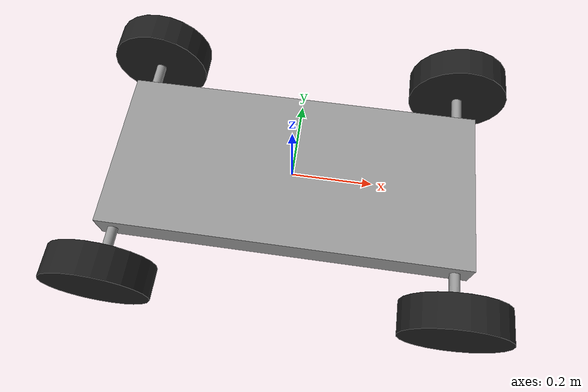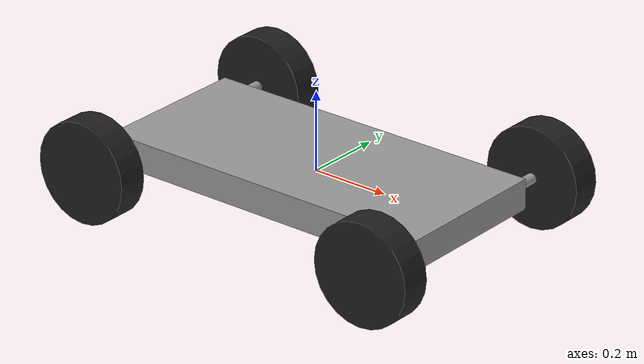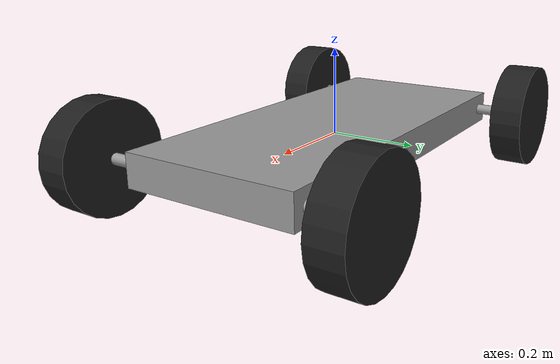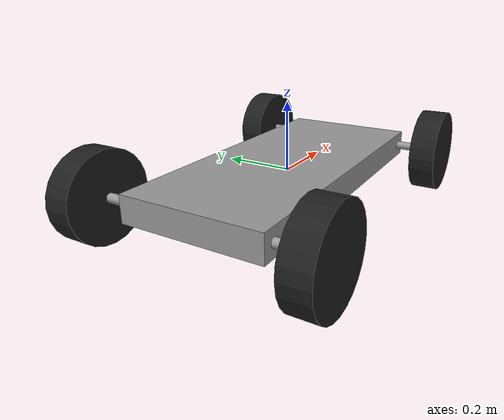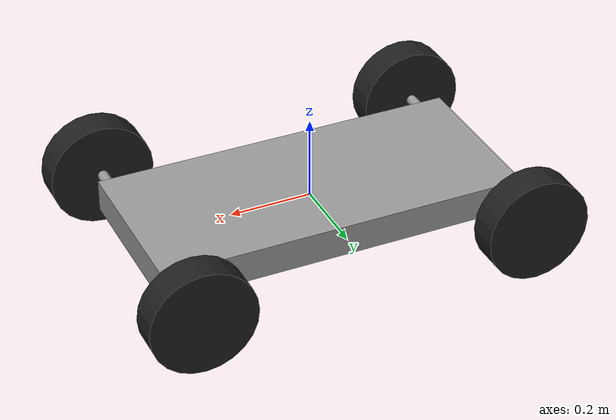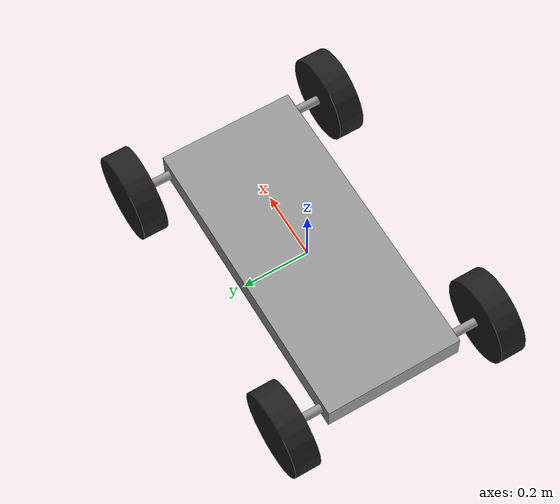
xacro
<?xml version="1.0"?>

<robot name="ros_car" xmlns:xacro="http://www.ros.org/wiki/xacro">

	<xacro:property name="PI" value="3.1415926535897931"/>
	<xacro:property name="DEG_2_RAD" value="${PI/180}"/>
	<xacro:property name="INCH_2_METER" value="0.0254"/>
	<xacro:property name="LB_2_KG" value="0.453592"/>

	<!-- Length [inch], Mass [pound] -->

	<xacro:property name="steer_link_diameter" value="1" />
	<xacro:property name="steer_link_length" value="3" />
	<xacro:property name="steer_link_mass" value="0.5" />

	<xacro:property name="chassis_width" value="16" />
	<xacro:property name="chassis_length" value="35.25" />
	<xacro:property name="chassis_depth" value="3" />
	<xacro:property name="chassis_mass" value="110" />

	<xacro:property name="wheel_diameter" value="10" />
	<xacro:property name="wheel_width" value="3" />
	<xacro:property name="wheel_mass" value="2.5" />

	<xacro:property name="laser_x" value="12" />
	<xacro:property name="laser_z" value="6" />

	<xacro:property name="max_base_velocity" value="1" />
	<xacro:property name="max_wheel_joint_velocity" value="${max_base_velocity/(wheel_diameter/2)}" /> <!-- rad/s -->

	<xacro:property name="max_steer_angle" value="${30*DEG_2_RAD}" />
	<xacro:property name="max_wheel_joint_effort" value="20" />
	<xacro:property name="wheel_joint_friction" value="0.0" />
	<xacro:property name="wheel_joint_damping" value="0.00" />

	<xacro:property name="wheel_stiffness" value="1000.0" />
	<xacro:property name="wheel_damping" value="1.0" />
	<xacro:property name="wheel_mu" value="1.0" />
	<xacro:property name="wheel_mu2" value="1.0" />
	<xacro:property name="wheel_slip1" value="0.0" />
	<xacro:property name="wheel_slip2" value="0.0" />

	<xacro:property name="max_steer_joint_effort" value="35" />
	<xacro:property name="max_steer_joint_velocity" value="${120*DEG_2_RAD}" />
	<xacro:property name="steer_joint_friction" value="1" />
	<xacro:property name="steer_joint_damping" value="1" />

	<xacro:property name="min_turn_radius" value="0.5" />

	<xacro:property name="min_laser_angle" value="${-100*DEG_2_RAD}" />
    <xacro:property name="max_laser_angle" value="${100*DEG_2_RAD}" />

	<!-- Coordinate convention: x-forward, y-left, z-up -->

	<link name="base_link">

		<collision>
			<origin xyz="0 0 0" rpy="0 0 0"/>
			<geometry>
				<box size="${chassis_length*INCH_2_METER} ${chassis_width*INCH_2_METER} ${chassis_depth*INCH_2_METER}"/>
			</geometry>
		</collision>

		<visual>
			<origin xyz="0 0 0" rpy="0 0 0"/>
			<geometry>
				<box size="${chassis_length*INCH_2_METER} ${chassis_width*INCH_2_METER} ${chassis_depth*INCH_2_METER}"/>
			</geometry>
		</visual>

		<inertial>
			<origin xyz="0 0 0" rpy="0 0 0"/>
			<mass value="${chassis_mass*LB_2_KG}"/>
			<inertia
				ixx="${chassis_mass/12.0*(chassis_width*chassis_width + chassis_depth*chassis_depth)*LB_2_KG*INCH_2_METER*INCH_2_METER}"
				iyy="${chassis_mass/12.0*(chassis_length*chassis_length + chassis_depth*chassis_depth)*LB_2_KG*INCH_2_METER*INCH_2_METER}"
				izz="${chassis_mass/12.0*(chassis_width*chassis_width + chassis_length*chassis_length)*LB_2_KG*INCH_2_METER*INCH_2_METER}"
				ixy="0.0"
				ixz="0.0"
				iyz="0.0"
			/>
		</inertial>

	</link>

	<gazebo reference="base_link">
		<material>Gazebo/Gray</material>
	</gazebo>

	<link name="rear_left_axle_link">

		<collision>
		  <origin xyz="0 ${steer_link_length*INCH_2_METER/2} 0" rpy="${PI/2} 0 0"/>
		  <geometry>
				<cylinder radius="${steer_link_diameter*INCH_2_METER/2}" length="${steer_link_length*INCH_2_METER}" />
		  </geometry>
		</collision>

		<visual>
		  <origin xyz="0 ${steer_link_length*INCH_2_METER/2} 0" rpy="${PI/2} 0 0"/>
		  <geometry>
			  <cylinder radius="${steer_link_diameter*INCH_2_METER/2}" length="${steer_link_length*INCH_2_METER}" />
		  </geometry>
		</visual>

		<inertial>
		  <origin xyz="0 0 0" rpy="${PI/2} 0 0"/>
		  <mass value="${steer_link_mass*LB_2_KG}"/>
		  <inertia
			  ixx="${steer_link_mass/12*(3*(steer_link_diameter/2)*(steer_link_diameter/2) + steer_link_length*steer_link_length)*LB_2_KG*INCH_2_METER*INCH_2_METER}"
			  iyy="${steer_link_mass/12*(3*(steer_link_diameter/2)*(steer_link_diameter/2) + steer_link_length*steer_link_length)*LB_2_KG*INCH_2_METER*INCH_2_METER}"
			  izz="${steer_link_mass/2*((steer_link_diameter/2)*(steer_link_diameter/2))*LB_2_KG*INCH_2_METER*INCH_2_METER}"
			  ixy="0.0"
			  ixz="0.0"
			  iyz="0.0"
		   />
		</inertial>

	</link>

	<gazebo reference="rear_left_axle_link">
		<material>Gazebo/Gray</material>
	</gazebo>

	<joint name="rear_left_axle_joint" type="fixed">
		<parent link="base_link"/>
		<child link="rear_left_axle_link"/>
		<origin xyz="${-(chassis_length-wheel_width)*INCH_2_METER/2} ${chassis_width*INCH_2_METER/2} 0" />
		<axis xyz="0 1 0" />
	</joint>

	<link name="rear_right_axle_link">

		<collision>
		  <origin xyz="0 ${-steer_link_length*INCH_2_METER/2} 0" rpy="${PI/2} 0 0"/>
		  <geometry>
				<cylinder radius="${steer_link_diameter*INCH_2_METER/2}" length="${steer_link_length*INCH_2_METER}" />
		  </geometry>
		</collision>

		<visual>
		  <origin xyz="0 ${-steer_link_length*INCH_2_METER/2} 0" rpy="${PI/2} 0 0"/>
		  <geometry>
			  <cylinder radius="${steer_link_diameter*INCH_2_METER/2}" length="${steer_link_length*INCH_2_METER}" />
		  </geometry>
		</visual>

		<inertial>
		  <origin xyz="0 0 0" rpy="${PI/2} 0 0"/>
		  <mass value="${steer_link_mass*LB_2_KG}"/>
		  <inertia
			  ixx="${steer_link_mass/12*(3*(steer_link_diameter/2)*(steer_link_diameter/2) + steer_link_length*steer_link_length)*LB_2_KG*INCH_2_METER*INCH_2_METER}"
			  iyy="${steer_link_mass/12*(3*(steer_link_diameter/2)*(steer_link_diameter/2) + steer_link_length*steer_link_length)*LB_2_KG*INCH_2_METER*INCH_2_METER}"
			  izz="${steer_link_mass/2*((steer_link_diameter/2)*(steer_link_diameter/2))*LB_2_KG*INCH_2_METER*INCH_2_METER}"
			  ixy="0.0"
			  ixz="0.0"
			  iyz="0.0"
		   />
		</inertial>

	</link>

	<gazebo reference="rear_right_axle_link">
		<material>Gazebo/Gray</material>
	</gazebo>

	<joint name="rear_right_axle_joint" type="fixed">
		<parent link="base_link"/>
		<child link="rear_right_axle_link"/>
		<origin xyz="${-(chassis_length-wheel_width)*INCH_2_METER/2} ${-chassis_width*INCH_2_METER/2} 0" />
		<axis xyz="0 1 0" />
	</joint>

	<link name="rear_right_wheel">

		<collision>
		  <origin xyz="0 0 0" rpy="${PI/2} 0 0"/>
		  <geometry>
				<cylinder radius="${wheel_diameter*INCH_2_METER/2}" length="${wheel_width*INCH_2_METER}" />
		  </geometry>
		  <contact_coefficients kp="${wheel_stiffness}" kd="${wheel_damping}" mu="${wheel_mu}" />
		  <!-- contact_coefficients mu="${wheel_mu}"/ -->
		  <surface>
	        <friction>
	          <ode>
	            <mu>${wheel_mu}</mu>
	            <mu2>${wheel_mu2}</mu2>
	            <slip1>${wheel_slip1}</slip1>
	            <slip2>${wheel_slip2}</slip2>
	          </ode>
	        </friction>
	        <contact>
	          <ode>
	            <kp>${wheel_stiffness}</kp>
	            <kd>${wheel_damping}</kd>
	          </ode>
	        </contact>
	      </surface>
		</collision>

		<visual>
		  <origin xyz="0 0 0" rpy="${PI/2} 0 0"/>
		  <geometry>
			  <cylinder radius="${wheel_diameter*INCH_2_METER/2}" length="${wheel_width*INCH_2_METER}" />
		  </geometry>
		</visual>

		<inertial>
		  <origin xyz="0 0 0" rpy="${PI/2} 0 0"/>
		  <mass value="${wheel_mass*LB_2_KG}"/>
		  <inertia
			  ixx="${wheel_mass/12*(3*(wheel_diameter/2)*(wheel_diameter/2) + wheel_width*wheel_width)*LB_2_KG*INCH_2_METER*INCH_2_METER}"
			  iyy="${wheel_mass/12*(3*(wheel_diameter/2)*(wheel_diameter/2) + wheel_width*wheel_width)*LB_2_KG*INCH_2_METER*INCH_2_METER}"
			  izz="${wheel_mass/2*((wheel_diameter/2)*(wheel_diameter/2))*LB_2_KG*INCH_2_METER*INCH_2_METER}"
			  ixy="0.0"
			  ixz="0.0"
			  iyz="0.0"
		   />
		</inertial>

	</link>

	<gazebo reference="rear_right_wheel">
		<material>Gazebo/Black</material>
	</gazebo>

	<joint name="rear_right_wheel_joint" type="continuous">
		<parent link="rear_right_axle_link"/>
		<child link="rear_right_wheel"/>
		<origin xyz="0 ${-(steer_link_length+wheel_width/2)*INCH_2_METER} 0" />
		<axis xyz="0 1 0" />
		<dynamics friction = "${wheel_joint_friction}" damping = "${wheel_joint_damping}"/>
		<limit effort="${max_wheel_joint_effort}" velocity="${max_wheel_joint_velocity}" />
	</joint>

	<link name="rear_left_wheel">

		<collision>
		  <origin xyz="0 0 0" rpy="${PI/2} 0 0"/>
		  <geometry>
				<cylinder radius="${wheel_diameter*INCH_2_METER/2}" length="${wheel_width*INCH_2_METER}" />
		  </geometry>
		  <contact_coefficients kp="${wheel_stiffness}" kd="${wheel_damping}" mu="${wheel_mu}" />
		  <!-- contact_coefficients mu="${wheel_mu}"/ -->
		  <surface>
	        <friction>
	          <ode>
	            <mu>${wheel_mu}</mu>
	            <mu2>${wheel_mu2}</mu2>
	            <slip1>${wheel_slip1}</slip1>
	            <slip2>${wheel_slip2}</slip2>
	          </ode>
	        </friction>
	        <contact>
	          <ode>
	            <kp>${wheel_stiffness}</kp>
	            <kd>${wheel_damping}</kd>
	          </ode>
	        </contact>
	      </surface>
		</collision>

		<visual>
		  <origin xyz="0 0 0" rpy="${PI/2} 0 0"/>
		  <geometry>
			  <cylinder radius="${wheel_diameter*INCH_2_METER/2}" length="${wheel_width*INCH_2_METER}" />
		  </geometry>
		</visual>

		<inertial>
		  <origin xyz="0 0 0" rpy="${PI/2} 0 0"/>
		  <mass value="${wheel_mass*LB_2_KG}"/>
		  <inertia
			  ixx="${wheel_mass/12*(3*(wheel_diameter/2)*(wheel_diameter/2) + wheel_width*wheel_width)*LB_2_KG*INCH_2_METER*INCH_2_METER}"
			  iyy="${wheel_mass/12*(3*(wheel_diameter/2)*(wheel_diameter/2) + wheel_width*wheel_width)*LB_2_KG*INCH_2_METER*INCH_2_METER}"
			  izz="${wheel_mass/2*((wheel_diameter/2)*(wheel_diameter/2))*LB_2_KG*INCH_2_METER*INCH_2_METER}"
			  ixy="0.0"
			  ixz="0.0"
			  iyz="0.0"
		   />
		</inertial>

	</link>

	<gazebo reference="rear_left_wheel">
		<material>Gazebo/Black</material>
	</gazebo>

	<joint name="rear_left_wheel_joint" type="continuous">
		<parent link="rear_left_axle_link"/>
		<child link="rear_left_wheel"/>
		<origin xyz="0 ${(steer_link_length+wheel_width/2)*INCH_2_METER} 0" />
		<axis xyz="0 1 0" />
		<dynamics friction = "${wheel_joint_friction}" damping = "${wheel_joint_damping}"/>
		<limit effort="${max_wheel_joint_effort}" velocity="${max_wheel_joint_velocity}" />
	</joint>

	<link name="front_left_steer_link">

		<collision>
		  <origin xyz="0 ${steer_link_length*INCH_2_METER/2} 0" rpy="${PI/2} 0 0"/>
		  <geometry>
				<cylinder radius="${steer_link_diameter*INCH_2_METER/2}" length="${steer_link_length*INCH_2_METER}" />
		  </geometry>
		</collision>

		<visual>
		  <origin xyz="0 ${steer_link_length*INCH_2_METER/2} 0" rpy="${PI/2} 0 0"/>
		  <geometry>
			  <cylinder radius="${steer_link_diameter*INCH_2_METER/2}" length="${steer_link_length*INCH_2_METER}" />
		  </geometry>
		</visual>

		<inertial>
		  <origin xyz="0 0 0" rpy="${PI/2} 0 0"/>
		  <mass value="${steer_link_mass*LB_2_KG}"/>
		  <inertia
			  ixx="${steer_link_mass/12*(3*(steer_link_diameter/2)*(steer_link_diameter/2) + steer_link_length*steer_link_length)*LB_2_KG*INCH_2_METER*INCH_2_METER}"
			  iyy="${steer_link_mass/12*(3*(steer_link_diameter/2)*(steer_link_diameter/2) + steer_link_length*steer_link_length)*LB_2_KG*INCH_2_METER*INCH_2_METER}"
			  izz="${steer_link_mass/2*((steer_link_diameter/2)*(steer_link_diameter/2))*LB_2_KG*INCH_2_METER*INCH_2_METER}"
			  ixy="0.0"
			  ixz="0.0"
			  iyz="0.0"
		   />
		</inertial>

	</link>

	<gazebo reference="front_left_steer_link">
		<material>Gazebo/Gray</material>
	</gazebo>

	<joint name="front_left_steer_joint" type="revolute">
		<parent link="base_link"/>
		<child link="front_left_steer_link"/>
		<origin xyz="${(chassis_length-wheel_width)*INCH_2_METER/2} ${chassis_width*INCH_2_METER/2} 0" />
		<axis xyz="0 0 1" />
		<dynamics friction = "${steer_joint_friction}" damping = "${steer_joint_damping}"/>
		<limit lower="${-max_steer_angle}" upper="${max_steer_angle}" effort="${max_steer_joint_effort}" velocity="${max_steer_joint_velocity}" />
	</joint>

	<link name="front_right_steer_link">

		<collision>
		  <origin xyz="0 ${-steer_link_length*INCH_2_METER/2} 0" rpy="${PI/2} 0 0"/>
		  <geometry>
				<cylinder radius="${steer_link_diameter*INCH_2_METER/2}" length="${steer_link_length*INCH_2_METER}" />
		  </geometry>
		</collision>

		<visual>
		  <origin xyz="0 ${-steer_link_length*INCH_2_METER/2} 0" rpy="${PI/2} 0 0"/>
		  <geometry>
			  <cylinder radius="${steer_link_diameter*INCH_2_METER/2}" length="${steer_link_length*INCH_2_METER}" />
		  </geometry>
		</visual>

		<inertial>
		  <origin xyz="0 0 0" rpy="${PI/2} 0 0"/>
		  <mass value="${steer_link_mass*LB_2_KG}"/>
		  <inertia
			  ixx="${steer_link_mass/12*(3*(steer_link_diameter/2)*(steer_link_diameter/2) + steer_link_length*steer_link_length)*LB_2_KG*INCH_2_METER*INCH_2_METER}"
			  iyy="${steer_link_mass/12*(3*(steer_link_diameter/2)*(steer_link_diameter/2) + steer_link_length*steer_link_length)*LB_2_KG*INCH_2_METER*INCH_2_METER}"
			  izz="${steer_link_mass/2*((steer_link_diameter/2)*(steer_link_diameter/2))*LB_2_KG*INCH_2_METER*INCH_2_METER}"
			  ixy="0.0"
			  ixz="0.0"
			  iyz="0.0"
		   />
		</inertial>

	</link>

	<gazebo reference="front_right_steer_link">
		<material>Gazebo/Gray</material>
	</gazebo>

	<joint name="front_right_steer_joint" type="revolute">
		<parent link="base_link"/>
		<child link="front_right_steer_link"/>
		<origin xyz="${(chassis_length-wheel_width)*INCH_2_METER/2} ${-chassis_width*INCH_2_METER/2} 0" />
		<axis xyz="0 0 1" />
		<dynamics friction = "${steer_joint_friction}" damping = "${steer_joint_damping}"/>
		<limit lower="${-max_steer_angle}" upper="${max_steer_angle}" effort="${max_steer_joint_effort}" velocity="${max_steer_joint_velocity}" />
	</joint>

	<link name="front_left_wheel">

		<collision>
		  <origin xyz="0 0 0" rpy="${PI/2} 0 0"/>
		  <geometry>
				<cylinder radius="${wheel_diameter*INCH_2_METER/2}" length="${wheel_width*INCH_2_METER}" />
		  </geometry>
		  <contact_coefficients kp="${wheel_stiffness}" kd="${wheel_damping}" mu="${wheel_mu}" />
		  <!-- contact_coefficients mu="${wheel_mu}"/ -->
		  <surface>
	        <friction>
	          <ode>
	            <mu>${wheel_mu}</mu>
	            <mu2>${wheel_mu2}</mu2>
	            <slip1>${wheel_slip1}</slip1>
	            <slip2>${wheel_slip2}</slip2>
	          </ode>
	        </friction>
	        <contact>
	          <ode>
	            <kp>${wheel_stiffness}</kp>
	            <kd>${wheel_damping}</kd>
	          </ode>
	        </contact>
	      </surface>
		</collision>

		<visual>
		  <origin xyz="0 0 0" rpy="${PI/2} 0 0"/>
		  <geometry>
			  <cylinder radius="${wheel_diameter*INCH_2_METER/2}" length="${wheel_width*INCH_2_METER}" />
		  </geometry>
		</visual>

		<inertial>
		  <origin xyz="0 0 0" rpy="${PI/2} 0 0"/>
		  <mass value="${wheel_mass*LB_2_KG}"/>
		  <inertia
			  ixx="${wheel_mass/12*(3*(wheel_diameter/2)*(wheel_diameter/2) + wheel_width*wheel_width)*LB_2_KG*INCH_2_METER*INCH_2_METER}"
			  iyy="${wheel_mass/12*(3*(wheel_diameter/2)*(wheel_diameter/2) + wheel_width*wheel_width)*LB_2_KG*INCH_2_METER*INCH_2_METER}"
			  izz="${wheel_mass/2*((wheel_diameter/2)*(wheel_diameter/2))*LB_2_KG*INCH_2_METER*INCH_2_METER}"
			  ixy="0.0"
			  ixz="0.0"
			  iyz="0.0"
		   />
		</inertial>

	</link>

	<gazebo reference="front_left_wheel">
		<material>Gazebo/Black</material>
	</gazebo>

	<joint name="front_left_wheel_joint" type="continuous">
		<parent link="front_left_steer_link"/>
		<child link="front_left_wheel"/>
		<origin xyz="0 ${(steer_link_length+wheel_width/2)*INCH_2_METER} 0" />
		<axis xyz="0 1 0" />
		<dynamics friction = "${wheel_joint_friction}" damping = "${wheel_joint_damping}"/>
		<limit effort="${max_wheel_joint_effort}" velocity="${max_wheel_joint_velocity}" />
	</joint>

	<link name="front_right_wheel">

		<collision>
		  <origin xyz="0 0 0" rpy="${PI/2} 0 0"/>
		  <geometry>
				<cylinder radius="${wheel_diameter*INCH_2_METER/2}" length="${wheel_width*INCH_2_METER}" />
		  </geometry>
		  <contact_coefficients kp="${wheel_stiffness}" kd="${wheel_damping}" mu="${wheel_mu}" />
		  <!-- contact_coefficients mu="${wheel_mu}"/ -->
		  <surface>
	        <friction>
	          <ode>
	            <mu>${wheel_mu}</mu>
	            <mu2>${wheel_mu2}</mu2>
	            <slip1>${wheel_slip1}</slip1>
	            <slip2>${wheel_slip2}</slip2>
	          </ode>
	        </friction>
	        <contact>
	          <ode>
	            <kp>${wheel_stiffness}</kp>
	            <kd>${wheel_damping}</kd>
	          </ode>
	        </contact>
	      </surface>
		</collision>

		<visual>
		  <origin xyz="0 0 0" rpy="${PI/2} 0 0"/>
		  <geometry>
			  <cylinder radius="${wheel_diameter*INCH_2_METER/2}" length="${wheel_width*INCH_2_METER}" />
		  </geometry>
		</visual>

		<inertial>
		  <origin xyz="0 0 0" rpy="${PI/2} 0 0"/>
		  <mass value="${wheel_mass*LB_2_KG}"/>
		  <inertia
			  ixx="${wheel_mass/12*(3*(wheel_diameter/2)*(wheel_diameter/2) + wheel_width*wheel_width)*LB_2_KG*INCH_2_METER*INCH_2_METER}"
			  iyy="${wheel_mass/12*(3*(wheel_diameter/2)*(wheel_diameter/2) + wheel_width*wheel_width)*LB_2_KG*INCH_2_METER*INCH_2_METER}"
			  izz="${wheel_mass/2*((wheel_diameter/2)*(wheel_diameter/2))*LB_2_KG*INCH_2_METER*INCH_2_METER}"
			  ixy="0.0"
			  ixz="0.0"
			  iyz="0.0"
		   />
		</inertial>

	</link>

	<gazebo reference="front_right_wheel">
		<material>Gazebo/Black</material>
	</gazebo>

	<joint name="front_right_wheel_joint" type="continuous">
		<parent link="front_right_steer_link"/>
		<child link="front_right_wheel"/>
		<origin xyz="0 ${-(steer_link_length+wheel_width/2)*INCH_2_METER} 0" />
		<axis xyz="0 1 0" />
		<dynamics friction = "${wheel_joint_friction}" damping = "${wheel_joint_damping}"/>
		<limit effort="${max_wheel_joint_effort}" velocity="${max_wheel_joint_velocity}" />
	</joint>

	<gazebo>

		<link name="hokuyo_link">
			<pose>${laser_x*INCH_2_METER} 0 ${laser_z*INCH_2_METER} 0 0 0</pose>
			<inertial>
			<mass>0.1</mass>
			</inertial>
			<visual name="visual">
			<geometry>
			  <mesh>
				<uri>model://hokuyo/meshes/hokuyo.dae</uri>
			  </mesh>
			</geometry>
			</visual>
			<collision name="collision-base">
			<pose>0 0 -0.0145 0 0 0</pose>
			<geometry>
			  <box>
				<size>0.05 0.05 0.041</size>
			  </box>
			</geometry>
			</collision>
			<collision name="collision-top">
			<pose>0 0 0.0205 0 0 0</pose>
			<geometry>
			  <cylinder>
				<radius>0.021</radius>
				<length>0.029</length>
			  </cylinder>
			</geometry>
			</collision>
			<sensor name="laser" type="ray">
				<pose>0.01 0 0.0175 0 -0 0</pose>
				<visualize>false</visualize>
				<ray>
				  <scan>
					<horizontal>
					  <samples>640</samples>
					  <resolution>1</resolution>
					  <min_angle>${min_laser_angle}</min_angle>
					  <max_angle>${max_laser_angle}</max_angle>
					</horizontal>
				  </scan>
				  <range>
					<min>0.08</min>
					<max>30</max>
					<resolution>0.01</resolution>
				  </range>
				</ray>
				<plugin name="gazebo_ros_head_hokuyo_controller" filename="libgazebo_ros_laser.so">
				  <topicName>/scan</topicName>
				  <frameName>base_link</frameName>
				</plugin>
			</sensor>
		</link>

		<joint name="hokuyo_joint" type="revolute">
		<child>hokuyo_link</child>
		<parent>base_link</parent>
		<axis>
		<xyz>0 0 1</xyz>
		<limit>
		  <upper>0</upper>
		  <lower>0</lower>
		</limit>
		</axis>
		</joint>

	</gazebo>

	<gazebo>

		<plugin name="ros_car_drive_controller" filename="libros_car_drive_plugin.so">

			<alwaysOn>true</alwaysOn>

			<leftSteerJoint>front_left_steer_joint</leftSteerJoint>
			<rightSteerJoint>front_right_steer_joint</rightSteerJoint>

			<minSteerAngle>${-max_steer_angle}</minSteerAngle>
			<maxSteerAngle>${max_steer_angle}</maxSteerAngle>

			<leftFrontWheelJoint>front_left_wheel_joint</leftFrontWheelJoint>
			<rightFrontWheelJoint>front_right_wheel_joint</rightFrontWheelJoint>
			<leftRearWheelJoint>rear_left_wheel_joint</leftRearWheelJoint>
			<rightRearWheelJoint>rear_right_wheel_joint</rightRearWheelJoint>

			<wheelDiameter>${wheel_diameter*INCH_2_METER}</wheelDiameter>
			<wheelTrackWidth>${(wheel_diameter+2*steer_link_length)*INCH_2_METER}</wheelTrackWidth>
			<wheelBaseLength>${(chassis_length-2*wheel_width)*INCH_2_METER}</wheelBaseLength>

			<maxWheelTorque>${max_wheel_joint_effort}</maxWheelTorque>
			<maxSteerVelocity>${max_steer_joint_velocity}</maxSteerVelocity>
			<minTurnRadius>${min_turn_radius}</minTurnRadius>

			<commandTopic>cmd_vel</commandTopic>
			<odometryTopic>odom</odometryTopic>
			<odometryFrame>odom</odometryFrame>
			<robotBaseFrame>base_link</robotBaseFrame>

		</plugin>

	</gazebo>

</robot>
